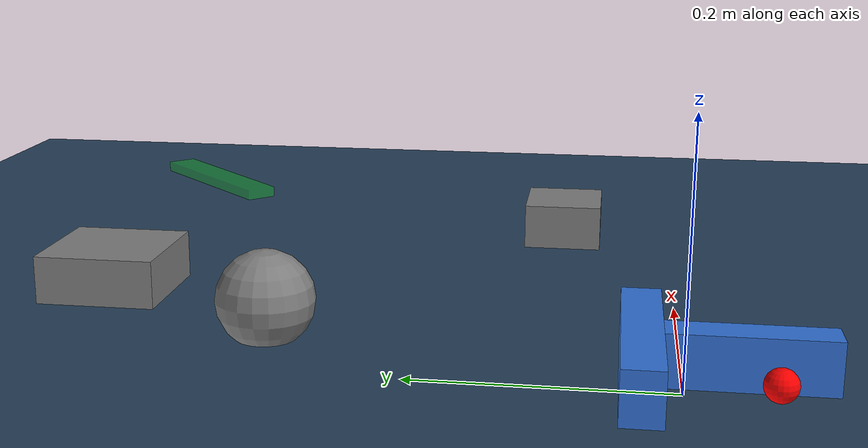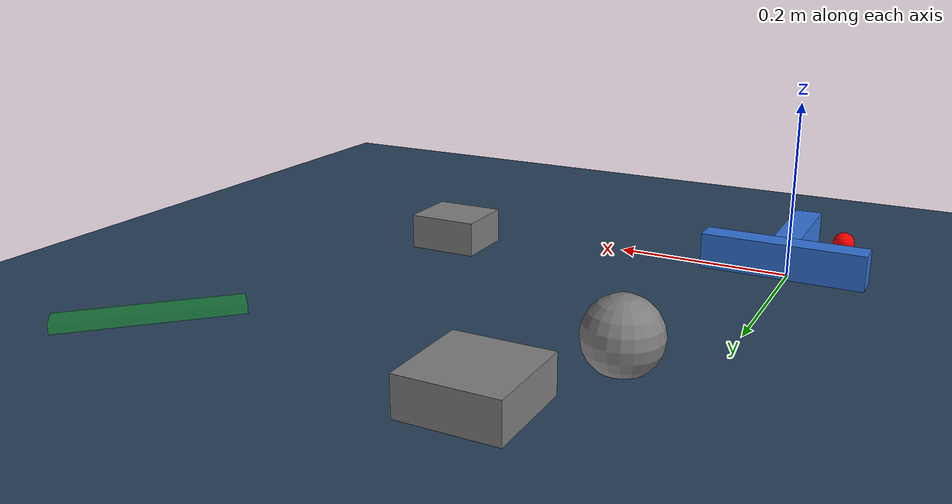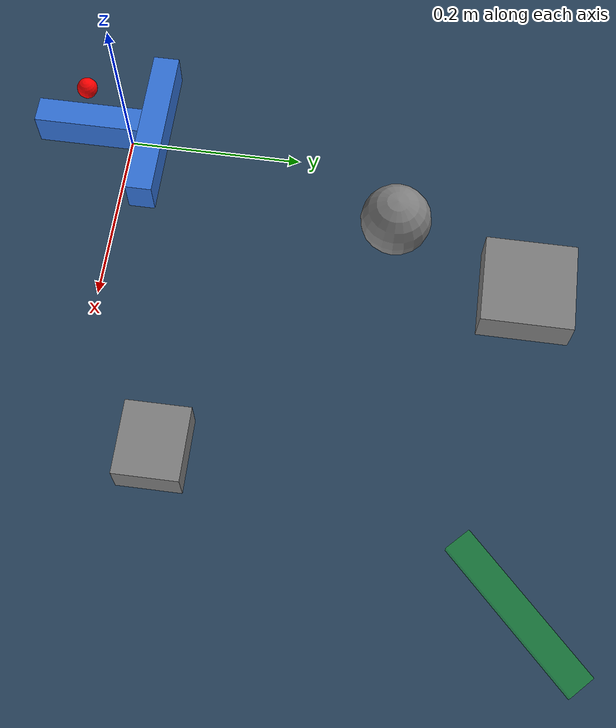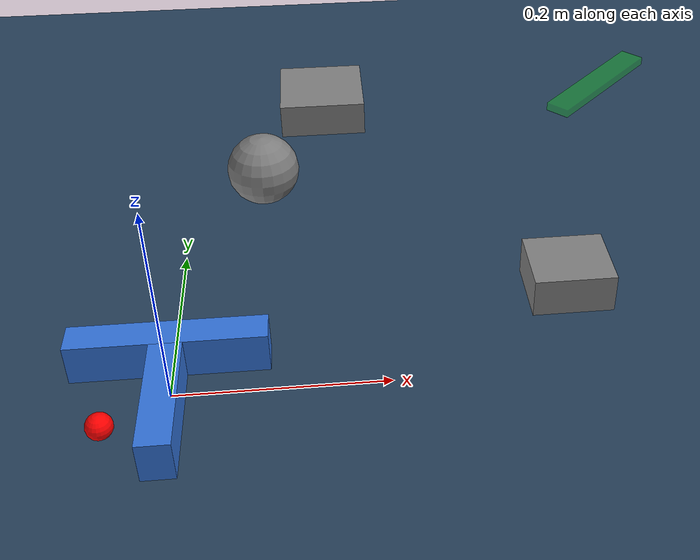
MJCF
<mujoco model="pusht_clutter_scene">
  <include file="pusht_clutter.xml"/>

  <statistic center="0.2 0.2 0" extent="0.9"/>

  <visual>
    <headlight diffuse="0.6 0.6 0.6" ambient="0.3 0.3 0.3" specular="0 0 0"/>
    <rgba haze="0.15 0.25 0.35 1"/>
  </visual>

  <asset>
    <texture type="skybox" builtin="gradient" rgb1="0.3 0.5 0.7" rgb2="0 0 0" width="512" height="3072"/>
    <texture type="2d" name="groundplane" builtin="checker" mark="edge" rgb1="0.2 0.3 0.4" rgb2="0.1 0.2 0.3"
      markrgb="0.8 0.8 0.8" width="300" height="300"/>
    <material name="groundplane" texture="groundplane" texuniform="true" texrepeat="5 5" reflectance="0.2"/>
  </asset>

  <worldbody>
    <light pos="0.2 0.2 1"/>
    <geom name="floor" size="0 0 .125" type="plane" material="groundplane"/>
  </worldbody>

</mujoco>

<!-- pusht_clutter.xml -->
<mujoco model="pusht_clutter">
  <option timestep="0.01" gravity="0 0 -9.81" iterations="20" ls_iterations="20" integrator="Euler"/>

  <default>
    <velocity ctrllimited="true" ctrlrange="-0.6 0.6" kv="100" forcerange="-200 200"/>
    <geom friction="0.5 0.005 0.0001" solref="0.004 1" solimp="0.9 0.95 0.001"/>
    <default class="goal">
      <geom conaffinity="0" contype="0" rgba="0 1 0 0.3"/>
    </default>
    <default class="obstacle">
      <geom conaffinity="1" contype="1" rgba="0.5 0.5 0.5 1"/>
    </default>
  </default>

  <worldbody>
    <body name="goal" mocap="true" pos="0.50 0.48 0.03" quat="0.92388 0 0 0.38268">
      <geom class="goal" name="goal_marker" type="box" size="0.09 0.015 0.005"/>
    </body>

    <body name="block" pos="0.0 0.0 0.03">
      <joint name="T_x" type="slide" axis="1 0 0" frictionloss="7.848" damping="0.0"/>
      <joint name="T_y" type="slide" axis="0 1 0" frictionloss="7.848" damping="0.0"/>
      <joint name="T_z" type="hinge" axis="0 0 1" frictionloss="0.47088" damping="0.0"/>
      <geom name="block_crossbar" type="box" size="0.090 0.015 0.020" pos="0.0 0.030 0.0" mass="1.0" rgba="0.2 0.45 0.85 1"/>
      <geom name="block_stem" type="box" size="0.015 0.060 0.020" pos="0.0 -0.045 0.0" mass="1.0" rgba="0.2 0.45 0.85 1"/>
    </body>

    <body name="pusher" pos="-0.05 -0.06 0.03">
      <joint name="root_x" type="slide" axis="1 0 0" damping="0.05"/>
      <joint name="root_y" type="slide" axis="0 1 0" damping="0.05"/>
      <geom name="pusher" type="sphere" size="0.012" mass="1.0" rgba="1 0 0 1"/>
      <site name="pusher" pos="0 0 0" rgba="0 0 0 0"/>
    </body>

    <geom class="obstacle" name="obs_circle" type="sphere" size="0.04" pos="0.08 0.32 0.03"/>
    <geom class="obstacle" name="obs_box" type="box" size="0.04 0.035 0.02" pos="0.38 0.10 0.03" euler="0 0 0.25"/>
    <geom class="obstacle" name="obs_tri" type="box" size="0.05 0.05 0.02" pos="0.15 0.47 0.03"/>
  </worldbody>

  <actuator>
    <velocity name="x_motor" joint="root_x"/>
    <velocity name="y_motor" joint="root_y"/>
  </actuator>

  <sensor>
    <framepos name="position" objtype="body" objname="block" reftype="body" refname="goal"/>
    <framequat name="orientation" objtype="body" objname="block" reftype="body" refname="goal"/>
  </sensor>
</mujoco>
